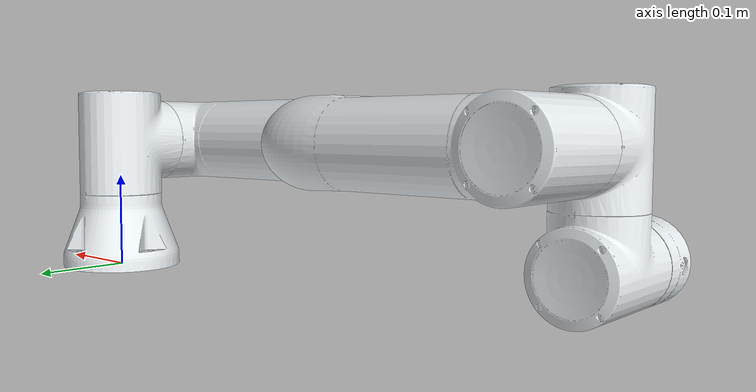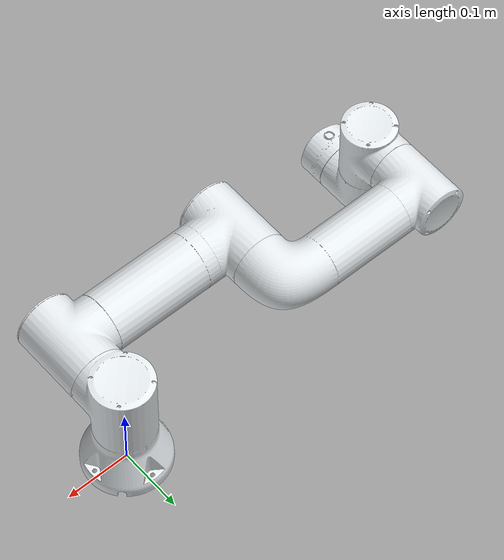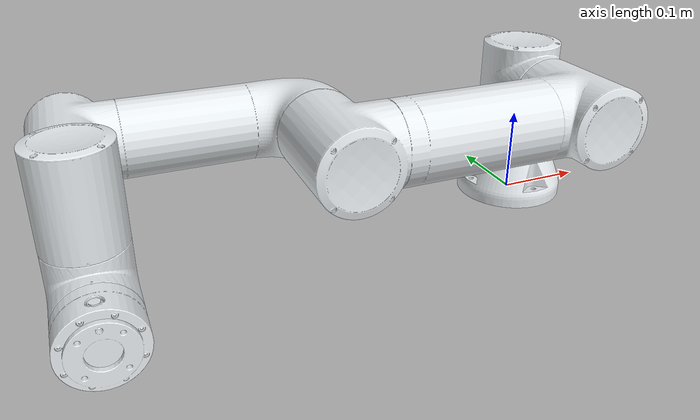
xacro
<?xml version="1.0"?>
<robot xmlns:xacro="http://www.ros.org/wiki/xacro" name="fairino3_v6_robot">
  <xacro:arg name="fairino_file" default="fairino.yaml" />
  <xacro:arg name="hardware_mode" default="real" />

  <!-- Import fairino3_v6_robot urdf file -->
  <xacro:include filename="$(find fairino_description)/urdf/fairino3_v6.urdf" />

  <!-- Import control_xacro -->
  <xacro:include filename="$(find fairino_description)/urdf/fairino.ros2_control.xacro" />

  <xacro:fairino_ros2_control
    name="fairino_ros2_control"
    fairino_file="$(arg fairino_file)"
    hardware_mode="$(arg hardware_mode)"
  />
</robot>

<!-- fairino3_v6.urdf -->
<robot
  name="fairino3_v6_robot">
  <link
    name="base_link">
    <inertial>
      <origin
        xyz="-0.00049027 -0.00045095 0.032527"
        rpy="0 0 0" />
      <mass
        value="0.78393" />
      <inertia
        ixx="0.0013854"
        ixy="1.1455E-05"
        ixz="-1.0642E-05"
        iyy="0.0013849"
        iyz="-9.7435E-06"
        izz="0.001977" />
    </inertial>
    <visual>
      <origin
        xyz="0 0 0"
        rpy="0 0 0" />
      <geometry>
        <mesh
          filename="package://fairino_description/meshes/fairino3_v6/base_link.STL" />
      </geometry>
      <material
        name="">
        <color
          rgba="0.89804 0.91765 0.92941 1" />
      </material>
    </visual>
    <collision>
      <origin
        xyz="0 0 0"
        rpy="0 0 0" />
      <geometry>
        <mesh
          filename="package://fairino_description/meshes/fairino3_v6/base_link.STL" />
      </geometry>
    </collision>
  </link>
  <link
    name="shoulder_link">
    <inertial>
      <origin
        xyz="-0.00005 -0.01592 0.00226"
        rpy="0 0 0" />
      <mass
        value="2.24" />
      <inertia
        ixx="0.00303904"
        ixy="-0.00000346"
        ixz="-0.00001029"
        iyy="0.00223536"
        iyz="0.00008620"
        izz="0.00296223" />
    </inertial>
    <visual>
      <origin
        xyz="0 0 0"
        rpy="0 0 0" />
      <geometry>
        <mesh
          filename="package://fairino_description/meshes/fairino3_v6/shoulder_link.STL" />
      </geometry>
      <material
        name="">
        <color
          rgba="0.89804 0.91765 0.92941 1" />
      </material>
    </visual>
    <collision>
      <origin
        xyz="0 0 0"
        rpy="0 0 0" />
      <geometry>
        <mesh
          filename="package://fairino_description/meshes/fairino3_v6/shoulder_link.STL" />
      </geometry>
    </collision>
  </link>
  <joint
    name="j1"
    type="revolute">
    <origin
      xyz="0 0 0"
      rpy="0 0 0" />
    <parent
      link="base_link" />
    <child
      link="shoulder_link" />
    <axis
      xyz="0 0 1" />
    <limit
      lower="-3.0543"
      upper="3.0543"
      effort="150"
      velocity="3.15" />
    <calibration
      rising="0"
      falling="0" />
    <dynamics
      damping="0"
      friction="0" />
    <safety_controller
      soft_lower_limit="-3.0543"
      soft_upper_limit="3.0543"
      k_position="15"
      k_velocity="10" />
  </joint>
  <link
    name="upperarm_link">
    <inertial>
      <origin
        xyz="0.13939 0.0 0.09954"
        rpy="0 0 0" />
      <mass
        value="4.94" />
      <inertia
        ixx="0.0068126"
        ixy="0.00000606"
        ixz="-0.00003661"
        iyy="0.09321437"
        iyz="0.00000024"
        izz="0.09150689" />
    </inertial>
    <visual>
      <origin
        xyz="0 0 0"
        rpy="0 0 0" />
      <geometry>
        <mesh
          filename="package://fairino_description/meshes/fairino3_v6/upperarm_link.STL" />
      </geometry>
      <material
        name="">
        <color
          rgba="0.89804 0.91765 0.92941 1" />
      </material>
    </visual>
    <collision>
      <origin
        xyz="0 0 0"
        rpy="0 0 0" />
      <geometry>
        <mesh
          filename="package://fairino_description/meshes/fairino3_v6/upperarm_link.STL" />
      </geometry>
    </collision>
  </link>
  <joint
    name="j2"
    type="revolute">
    <origin
      xyz="0 0 0.14"
      rpy="1.5708 0 0" />
    <parent
      link="shoulder_link" />
    <child
      link="upperarm_link" />
    <axis
      xyz="0 0 1" />
    <limit
      lower="-4.6251"
      upper="1.4835"
      effort="150"
      velocity="3.15" />
    <calibration
      rising="0"
      falling="0" />
    <dynamics
      damping="0"
      friction="0" />
    <safety_controller
      soft_lower_limit="-4.6251"
      soft_upper_limit="1.4835"
      k_position="15"
      k_velocity="10" />
  </joint>
  <link
    name="forearm_link">
    <inertial>
      <origin
        xyz="0.05899 0.00008 0.01299"
        rpy="0 0 0" />
      <mass
        value="2.29" />
      <inertia
        ixx="0.00263873"
        ixy="0.00002077"
        ixz="-0.00014132"
        iyy="0.02074603"
        iyz="-0.00000186"
        izz="0.02039086" />
    </inertial>
    <visual>
      <origin
        xyz="0 0 0"
        rpy="0 0 0" />
      <geometry>
        <mesh
          filename="package://fairino_description/meshes/fairino3_v6/forearm_link.STL" />
      </geometry>
      <material
        name="">
        <color
          rgba="0.89804 0.91765 0.92941 1" />
      </material>
    </visual>
    <collision>
      <origin
        xyz="0 0 0"
        rpy="0 0 0" />
      <geometry>
        <mesh
          filename="package://fairino_description/meshes/fairino3_v6/forearm_link.STL" />
      </geometry>
    </collision>
  </link>
  <joint
    name="j3"
    type="revolute">
    <origin
      xyz="-0.28 0 0"
      rpy="0 0 0" />
    <parent
      link="upperarm_link" />
    <child
      link="forearm_link" />
    <axis
      xyz="0 0 1" />
    <limit
      lower="-2.8274"
      upper="2.8274"
      effort="150"
      velocity="3.15" />
    <calibration
      rising="0"
      falling="0" />
    <dynamics
      damping="0"
      friction="0" />
    <safety_controller
      soft_lower_limit="-2.8274"
      soft_upper_limit="2.8274"
      k_position="15"
      k_velocity="10" />
  </joint>
  <link
    name="wrist1_link">
    <inertial>
      <origin
        xyz="0.00005 -0.00233 0.01467"
        rpy="0 0 0" />
      <mass
        value="1.56" />
      <inertia
        ixx="0.00162646"
        ixy="-0.00000285"
        ixz="-0.00000348"
        iyy="0.00158068"
        iyz="0.00006122"
        izz="0.00125531" />
    </inertial>
    <visual>
      <origin
        xyz="0 0 0"
        rpy="0 0 0" />
      <geometry>
        <mesh
          filename="package://fairino_description/meshes/fairino3_v6/wrist1_link.STL" />
      </geometry>
      <material
        name="">
        <color
          rgba="0.89804 0.91765 0.92941 1" />
      </material>
    </visual>
    <collision>
      <origin
        xyz="0 0 0"
        rpy="0 0 0" />
      <geometry>
        <mesh
          filename="package://fairino_description/meshes/fairino3_v6/wrist1_link.STL" />
      </geometry>
    </collision>
  </link>
  <joint
    name="j4"
    type="revolute">
    <origin
      xyz="-0.24001 0 0"
      rpy="0 0 0" />
    <parent
      link="forearm_link" />
    <child
      link="wrist1_link" />
    <axis
      xyz="0 0 1" />
    <limit
      lower="-4.6251"
      upper="1.4835"
      effort="28"
      velocity="3.2" />
    <calibration
      rising="0"
      falling="0" />
    <dynamics
      damping="0"
      friction="0" />
    <safety_controller
      soft_lower_limit="-4.6251"
      soft_upper_limit="1.4835"
      k_position="15"
      k_velocity="10" />
  </joint>
  <link
    name="wrist2_link">
    <inertial>
      <origin
        xyz="-0.00005 0.00233 0.01467"
        rpy="0 0 0" />
      <mass
        value="1.56" />
      <inertia
        ixx="0.00162646"
        ixy="-0.00000285"
        ixz="0.00000348"
        iyy="0.00158068"
        iyz="-0.00006122"
        izz="0.00125531" />
    </inertial>
    <visual>
      <origin
        xyz="0 0 0"
        rpy="0 0 0" />
      <geometry>
        <mesh
          filename="package://fairino_description/meshes/fairino3_v6/wrist2_link.STL" />
      </geometry>
      <material
        name="">
        <color
          rgba="0.89804 0.91765 0.92941 1" />
      </material>
    </visual>
    <collision>
      <origin
        xyz="0 0 0"
        rpy="0 0 0" />
      <geometry>
        <mesh
          filename="package://fairino_description/meshes/fairino3_v6/wrist2_link.STL" />
      </geometry>
    </collision>
  </link>
  <joint
    name="j5"
    type="revolute">
    <origin
      xyz="0 0 0.102"
      rpy="1.5708 0 0" />
    <parent
      link="wrist1_link" />
    <child
      link="wrist2_link" />
    <axis
      xyz="0 0 1" />
    <limit
      lower="-3.0543"
      upper="3.0543"
      effort="28"
      velocity="3.2" />
    <calibration
      rising="0"
      falling="0" />
    <dynamics
      damping="0"
      friction="0" />
    <safety_controller
      soft_lower_limit="-3.0543"
      soft_upper_limit="3.0543"
      k_position="15"
      k_velocity="10" />
  </joint>
  <link
    name="wrist3_link">
    <inertial>
      <origin
        xyz="-0.00055 -0.00111 -0.02005"
        rpy="0 0 0" />
      <mass
        value="0.36" />
      <inertia
        ixx="0.00023024"
        ixy="0.00000023"
        ixz="-0.00000058"
        iyy="0.00023033"
        iyz="-0.00000116"
        izz="0.00035930" />
    </inertial>
    <visual>
      <origin
        xyz="0 0 0"
        rpy="0 0 0" />
      <geometry>
        <mesh
          filename="package://fairino_description/meshes/fairino3_v6/wrist3_link.STL" />
      </geometry>
      <material
        name="">
        <color
          rgba="0.89804 0.91765 0.92941 1" />
      </material>
    </visual>
    <collision>
      <origin
        xyz="0 0 0"
        rpy="0 0 0" />
      <geometry>
        <mesh
          filename="package://fairino_description/meshes/fairino3_v6/wrist3_link.STL" />
      </geometry>
    </collision>
  </link>
  <joint
    name="j6"
    type="revolute">
    <origin
      xyz="0 0 0.102"
      rpy="-1.5708 0 0" />
    <parent
      link="wrist2_link" />
    <child
      link="wrist3_link" />
    <axis
      xyz="0 0 1" />
    <limit
      lower="-3.0543"
      upper="3.0543"
      effort="28"
      velocity="3.2" />
    <calibration
      rising="0"
      falling="0" />
    <dynamics
      damping="0"
      friction="0" />
    <safety_controller
      soft_lower_limit="-3.0543"
      soft_upper_limit="3.0543"
      k_position="15"
      k_velocity="10" />
  </joint>
</robot>
